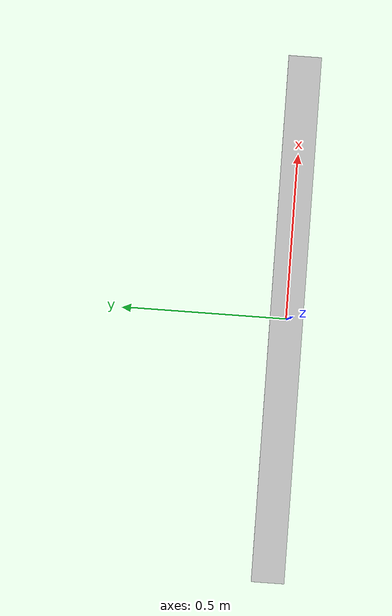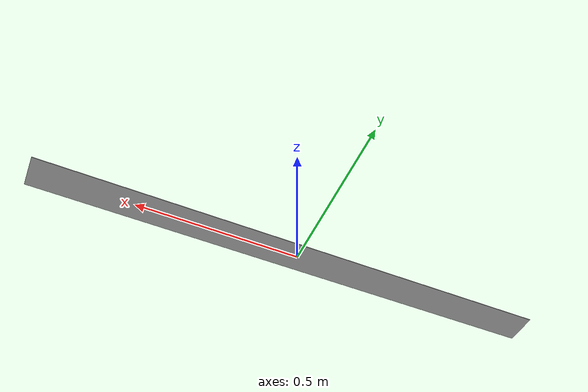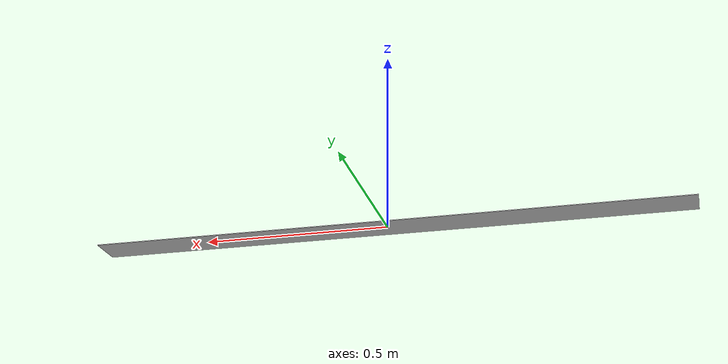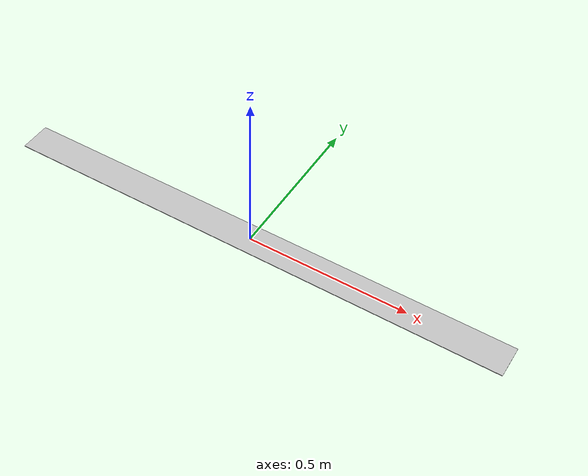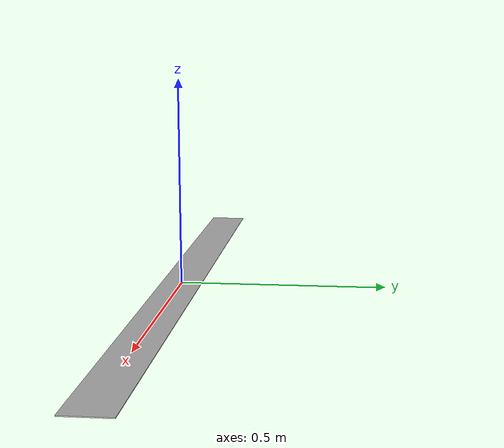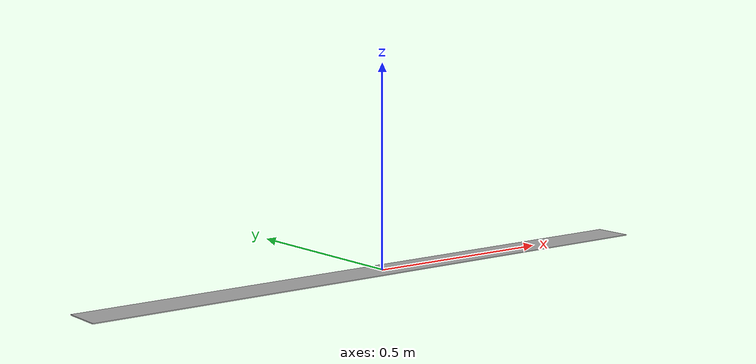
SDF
<?xml version="1.0" ?>
<sdf version="1.6">
  <model name="red_white_tape">
    <static>true</static>
    <link name="link">
      <collision name="collision">
        <geometry>
          <mesh>
            <uri>model://robocup_meshes/barrier_tapes/red_meshes/Barrier_Tape_Red_White.dae</uri>
          </mesh>
        </geometry>
      </collision>
      <visual name="visual">
        <geometry>
          <mesh>
            <uri>model://robocup_meshes/barrier_tapes/red_meshes/Barrier_Tape_Red_White.dae</uri>
          </mesh>
        </geometry>
      </visual>
    </link>
  </model>
</sdf>
